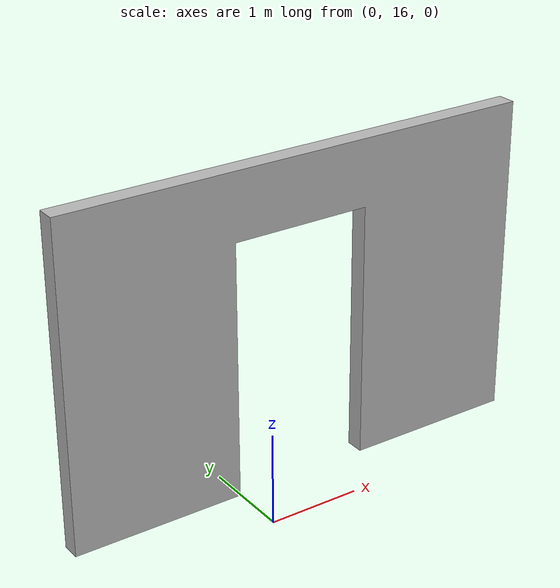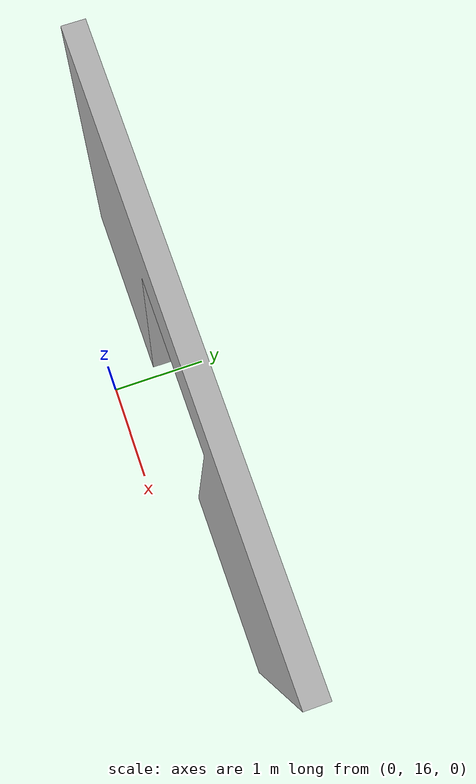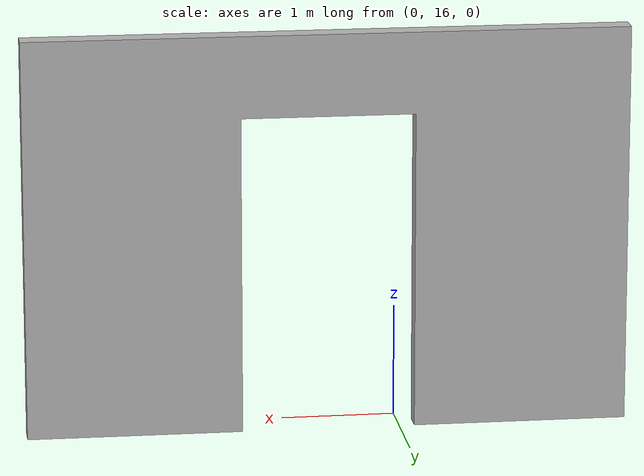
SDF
<?xml version="1.0"?>
<sdf version="1.5">
    <model name="house2">
        <static>true</static>
        <link name="link">
            <collision name="collision1">
                <pose>0 12.5 0 0 0 0</pose>
                <geometry>
                    <mesh>
                        <uri>model://house_scene_1_wall_w_door/meshes/scene_1_wall_w_door.dae</uri>
                    </mesh>
                </geometry>
            </collision>
            <visual name="visual_walls2">
              <pose>0 12.5 0 0 0 0</pose>
              <geometry>
              <mesh>
                 <uri>model://house_scene_1_wall_w_door/meshes/scene_1_wall_w_door.dae</uri>
              </mesh>
              </geometry>
              <material>
                  <script>
                      <uri>model://house_scene_1_wall_w_door/materials/scripts</uri>
                      <uri>model://house_scene_1_wall_w_door/materials/textures</uri>
                      <name>houseMat/Diffuse</name>
                  </script>
              </material>
             </visual>

        </link>
    </model>
</sdf>
